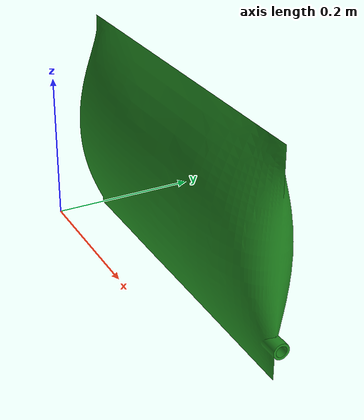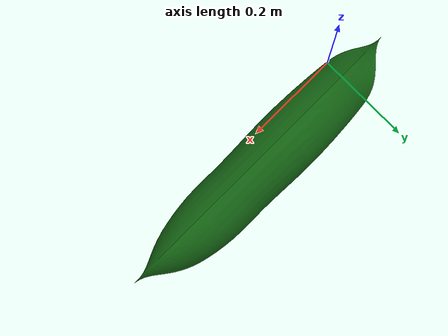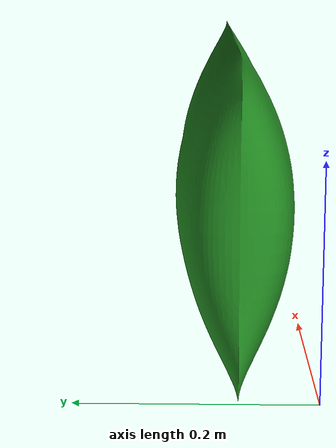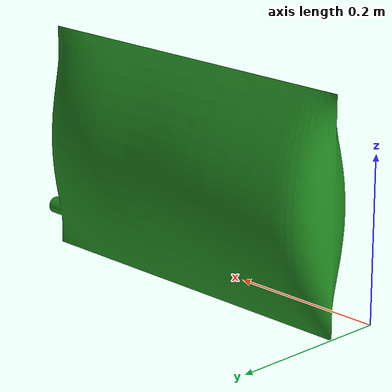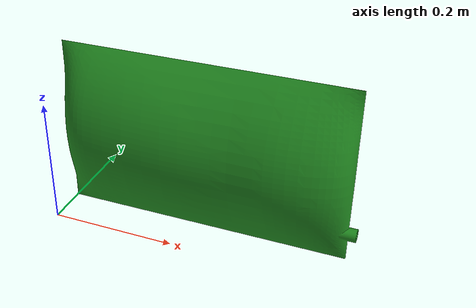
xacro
<?xml version="1.0"?>
<robot name="bladder" xmlns:xacro="http://ros.org/wiki/xacro">

   <!-- General Properties -->
   <xacro:property name="bladder_length" value="0.4572" />
   <xacro:property name="bladder_width" value="0.2794" />
   <xacro:property name="bladder_thickness" value="0.1016" />

     <!-- Derived Variables -->
  <material name="bladder_color" >
    <color rgba="0.133 0.55 0.13 1" /> <!--forest green-->
  </material>

   <!-- inflatable air bladder -->
   <link name="bladder_link">
     <visual>
       <origin xyz="0 0 0" rpy="0 0 0" />
       <geometry>
         <mesh filename="package://superchick/meshes/bladder.stl" scale=".001 .001 .001" />
       </geometry>
       <material name="bladder_color"/>
       <origin xyz="0 0 0" rpy="0 0 0" />
     </visual>
     <collision>
       <geometry>
         <mesh filename="package://superchick/meshes/bladder.stl" scale=".001 .001 .001" />
       </geometry>
     </collision>
     <inertial>
       <mass value="10"/>
       <inertia ixx="1.0" ixy="0.0" ixz="0.0" iyy="1.0" iyz="0.0" izz="1.0"/>
     </inertial>
   </link>

</robot>
